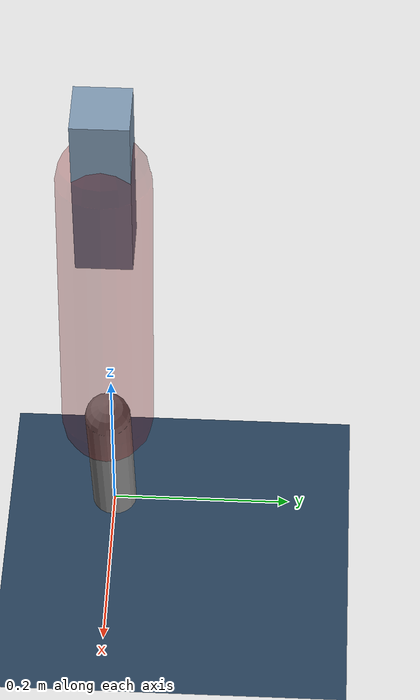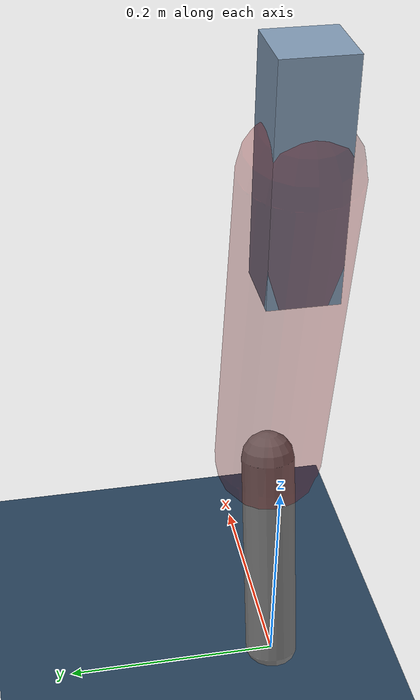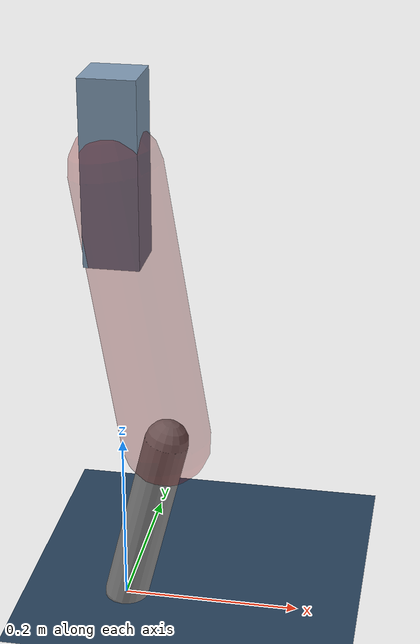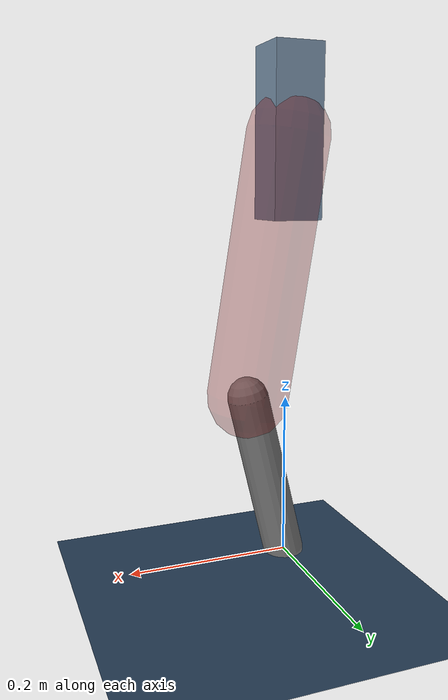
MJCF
<mujoco model="Hopper2D">
	<compiler inertiafromgeom="true" angle="radian" />
	<option timestep="0.001" integrator="implicit" cone="elliptic" solver="Newton" tolerance="1e-10" />

	<default>
		<geom contype="1" conaffinity="1" condim="3" friction="2 0.005 0.0001" solref="0.005 1" />
		<joint limited="true" damping="0.1" />
	</default>

	<asset>
		<texture name="skybox" type="skybox" builtin="gradient" rgb1=".4 .6 .8" rgb2="0 0 0" width="800" height="800" />
		<texture name="grid" type="2d" builtin="checker" rgb1=".1 .2 .3" rgb2=".2 .3 .4" width="300" height="300" mark="edge" markrgb=".2 .3 .4" />
		<material name="ground" texture="grid" texrepeat="1 1" texuniform="true" reflectance="0.1" />
		<material name="leg" rgba="0.5 0.6 0.7 1" />
	</asset>

	<worldbody>

		<geom name="floor" type="plane" size="5 5 0.25" material="ground" />

		<light directional="false" diffuse="0.8 0.8 0.8" specular="0.3 0.3 0.3" pos="0 0 2" dir="0 0 -1" />
		<light mode="targetbodycom" target="base" directional="false" diffuse="0.8 0.8 0.8" specular="0.3 0.3 0.3" pos="0 0 2" dir="0 0 -1" />

		<camera name="fixed" pos="0 -2 1" xyaxes="1 0 0 0 0 1" />
		<camera name="tracking" mode="trackcom" pos="0 -3 1" />

		<body name="root" pos="0 0 0.5185651055271162">
			<joint name="slide_x" type="slide" axis="1 0 0" range="-100 100" />
			<joint name="slide_z" type="slide" axis="0 0 1" range="0 10" />

			<body name="base" pos="0 0 0">
				<geom name="torso" type="box" size="0.03 0.03 0.1" mass="2.284" material="leg" />

				<body name="link1" pos="0 0 0" euler="0 1.4123036076550306 0">
					<joint type="hinge" axis="0 -1 0" pos="0 0 0" name="hinge1" limited="true" range="-3.14 3.14" stiffness="0" damping="0.1" />
					<geom name="thigh" type="capsule" fromto="0 0 0 0.3173210333394978 0 0" size="0.05" rgba="0.5 0 0 0.3" mass="1.0358988933505937" />

					<body name="link2" pos="0.3173210333394978 0 0" euler="0 0.3978568053532148 0">
						<joint type="hinge" axis="0 -1 0" pos="0 0 0" name="hinge2" limited="true" range="-3.14 3.14" stiffness="0" damping="0.1" />
						<geom name="shank" type="capsule" fromto="0 0 0 0.21124407218761845 0 0" size="0.025" mass="0.41031966496885663" />

					</body>
				</body>
			</body>
		</body>
	</worldbody>

	<actuator>
		<motor name="torque1" joint="hinge1" ctrlrange="-58.603779204163274 58.603779204163274" ctrllimited="true" gear="1" />
		<motor name="torque2" joint="hinge2" ctrlrange="-98.07479803295423 98.07479803295423" ctrllimited="true" gear="1" />
	</actuator>
</mujoco>
